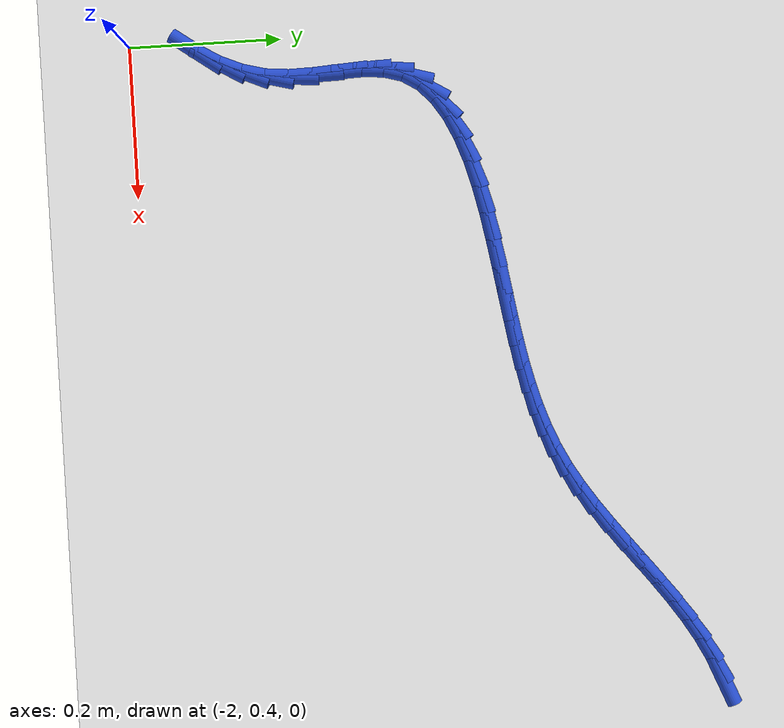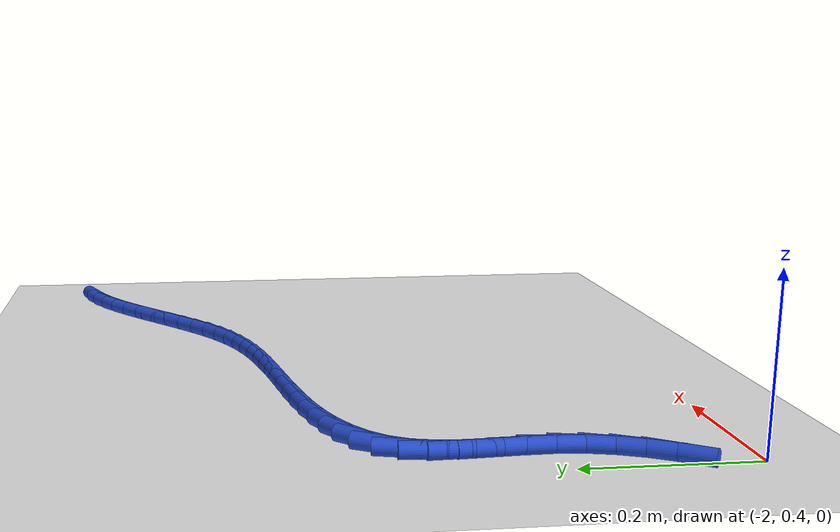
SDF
<sdf version="1.6">
 <world name="default">
  <model name="ground_plane">
   <static>1</static>
   <link name="link">
    <collision name="collision">
     <geometry><plane><normal>0 0 1</normal><size>100 100</size></plane></geometry>
     <surface><friction><ode><mu>100</mu><mu2>50</mu2></ode></friction></surface>
    </collision>
    <visual name="visual">
     <cast_shadows>0</cast_shadows>
     <geometry><plane><normal>0 0 1</normal><size>100 100</size></plane></geometry>
     <material>
      <script><uri>file://media/materials/scripts/gazebo.material</uri><name>Gazebo/WhiteGlow</name></script>
     </material>
    </visual>
   </link>
  </model>
  <model name="line">
   <link name="link_56">
    <pose>-1.12809393031731 1.1314713326679728 0.01 0 1.57 0.3816964095908053</pose>
    <collision name="collision">
     <geometry><cylinder><radius>0.01</radius><length>0.08</length></cylinder></geometry>
    </collision>
    <visual name="visual">
     <material>
      <script><name>Gazebo/Blue</name><uri>file://media/materials/scripts/gazebo.material</uri></script>
     </material>
     <geometry><cylinder><radius>0.01</radius><length>0.08</length></cylinder></geometry>
    </visual>
   </link>
   <link name="link_57">
    <pose>-1.1558362141451612 1.1203361043866404 0.01 0 1.57 0.47477163738193723</pose>
    <collision name="collision">
     <geometry><cylinder><radius>0.01</radius><length>0.08</length></cylinder></geometry>
    </collision>
    <visual name="visual">
     <material>
      <script><name>Gazebo/Blue</name><uri>file://media/materials/scripts/gazebo.material</uri></script>
     </material>
     <geometry><cylinder><radius>0.01</radius><length>0.08</length></cylinder></geometry>
    </visual>
   </link>
   <link name="link_58">
    <pose>-1.1829230337664418 1.1064139290656299 0.01 0 1.57 0.5476718748757278</pose>
    <collision name="collision">
     <geometry><cylinder><radius>0.01</radius><length>0.08</length></cylinder></geometry>
    </collision>
    <visual name="visual">
     <material>
      <script><name>Gazebo/Blue</name><uri>file://media/materials/scripts/gazebo.material</uri></script>
     </material>
     <geometry><cylinder><radius>0.01</radius><length>0.08</length></cylinder></geometry>
    </visual>
   </link>
   <link name="link_59">
    <pose>-1.209465143816394 1.0902257233415507 0.01 0 1.57 0.6018701174483252</pose>
    <collision name="collision">
     <geometry><cylinder><radius>0.01</radius><length>0.08</length></cylinder></geometry>
    </collision>
    <visual name="visual">
     <material>
      <script><name>Gazebo/Blue</name><uri>file://media/materials/scripts/gazebo.material</uri></script>
     </material>
     <geometry><cylinder><radius>0.01</radius><length>0.08</length></cylinder></geometry>
    </visual>
   </link>
   <link name="link_60">
    <pose>-1.235573298930259 1.0722924038510127 0.01 0 1.57 0.6389884237398049</pose>
    <collision name="collision">
     <geometry><cylinder><radius>0.01</radius><length>0.08</length></cylinder></geometry>
    </collision>
    <visual name="visual">
     <material>
      <script><name>Gazebo/Blue</name><uri>file://media/materials/scripts/gazebo.material</uri></script>
     </material>
     <geometry><cylinder><radius>0.01</radius><length>0.08</length></cylinder></geometry>
    </visual>
   </link>
   <link name="link_61">
    <pose>-1.2613582537432801 1.0531348872306256 0.01 0 1.57 0.6603378455330079</pose>
    <collision name="collision">
     <geometry><cylinder><radius>0.01</radius><length>0.08</length></cylinder></geometry>
    </collision>
    <visual name="visual">
     <material>
      <script><name>Gazebo/Blue</name><uri>file://media/materials/scripts/gazebo.material</uri></script>
     </material>
     <geometry><cylinder><radius>0.01</radius><length>0.08</length></cylinder></geometry>
    </visual>
   </link>
   <link name="link_62">
    <pose>-1.2869307628906987 1.0332740901170003 0.01 0 1.57 0.6667061618446942</pose>
    <collision name="collision">
     <geometry><cylinder><radius>0.01</radius><length>0.08</length></cylinder></geometry>
    </collision>
    <visual name="visual">
     <material>
      <script><name>Gazebo/Blue</name><uri>file://media/materials/scripts/gazebo.material</uri></script>
     </material>
     <geometry><cylinder><radius>0.01</radius><length>0.08</length></cylinder></geometry>
    </visual>
   </link>
   <link name="link_63">
    <pose>-1.3124015810077565 1.0132309291467452 0.01 0 1.57 0.6582720526338149</pose>
    <collision name="collision">
     <geometry><cylinder><radius>0.01</radius><length>0.08</length></cylinder></geometry>
    </collision>
    <visual name="visual">
     <material>
      <script><name>Gazebo/Blue</name><uri>file://media/materials/scripts/gazebo.material</uri></script>
     </material>
     <geometry><cylinder><radius>0.01</radius><length>0.08</length></cylinder></geometry>
    </visual>
   </link>
   <link name="link_64">
    <pose>-1.3378814627296964 0.9935263209564712 0.01 0 1.57 0.6345759876998177</pose>
    <collision name="collision">
     <geometry><cylinder><radius>0.01</radius><length>0.08</length></cylinder></geometry>
    </collision>
    <visual name="visual">
     <material>
      <script><name>Gazebo/Blue</name><uri>file://media/materials/scripts/gazebo.material</uri></script>
     </material>
     <geometry><cylinder><radius>0.01</radius><length>0.08</length></cylinder></geometry>
    </visual>
   </link>
   <link name="link_65">
    <pose>-1.363481162691759 0.9746811821827874 0.01 0 1.57 0.5945290219341868</pose>
    <collision name="collision">
     <geometry><cylinder><radius>0.01</radius><length>0.08</length></cylinder></geometry>
    </collision>
    <visual name="visual">
     <material>
      <script><name>Gazebo/Blue</name><uri>file://media/materials/scripts/gazebo.material</uri></script>
     </material>
     <geometry><cylinder><radius>0.01</radius><length>0.08</length></cylinder></geometry>
    </visual>
   </link>
   <link name="link_66">
    <pose>-1.3893114355291878 0.9572164294623045 0.01 0 1.57 0.5364926561047353</pose>
    <collision name="collision">
     <geometry><cylinder><radius>0.01</radius><length>0.08</length></cylinder></geometry>
    </collision>
    <visual name="visual">
     <material>
      <script><name>Gazebo/Blue</name><uri>file://media/materials/scripts/gazebo.material</uri></script>
     </material>
     <geometry><cylinder><radius>0.01</radius><length>0.08</length></cylinder></geometry>
    </visual>
   </link>
   <link name="link_67">
    <pose>-1.4154830363205189 0.9416529108095737 0.01 0 1.57 0.4636962202911939</pose>
    <collision name="collision">
     <geometry><cylinder><radius>0.01</radius><length>0.08</length></cylinder></geometry>
    </collision>
    <visual name="visual">
     <material>
      <script><name>Gazebo/Blue</name><uri>file://media/materials/scripts/gazebo.material</uri></script>
     </material>
     <geometry><cylinder><radius>0.01</radius><length>0.08</length></cylinder></geometry>
    </visual>
   </link>
   <link name="link_68">
    <pose>-1.4421078350065983 0.9283388935949337 0.01 0 1.57 0.39261419955952964</pose>
    <collision name="collision">
     <geometry><cylinder><radius>0.01</radius><length>0.08</length></cylinder></geometry>
    </collision>
    <visual name="visual">
     <material>
      <script><name>Gazebo/Blue</name><uri>file://media/materials/scripts/gazebo.material</uri></script>
     </material>
     <geometry><cylinder><radius>0.01</radius><length>0.08</length></cylinder></geometry>
    </visual>
   </link>
   <link name="link_69">
    <pose>-1.4693012216646817 0.9170777282022049 0.01 0 1.57 0.32882199034700965</pose>
    <collision name="collision">
     <geometry><cylinder><radius>0.01</radius><length>0.08</length></cylinder></geometry>
    </collision>
    <visual name="visual">
     <material>
      <script><name>Gazebo/Blue</name><uri>file://media/materials/scripts/gazebo.material</uri></script>
     </material>
     <geometry><cylinder><radius>0.01</radius><length>0.08</length></cylinder></geometry>
    </visual>
   </link>
   <link name="link_70">
    <pose>-1.497179279434528 0.9075654789654604 0.01 0 1.57 0.274211165654365</pose>
    <collision name="collision">
     <geometry><cylinder><radius>0.01</radius><length>0.08</length></cylinder></geometry>
    </collision>
    <visual name="visual">
     <material>
      <script><name>Gazebo/Blue</name><uri>file://media/materials/scripts/gazebo.material</uri></script>
     </material>
     <geometry><cylinder><radius>0.01</radius><length>0.08</length></cylinder></geometry>
    </visual>
   </link>
   <link name="link_71">
    <pose>-1.5258580914558948 0.8994982102187736 0.01 0 1.57 0.22989105613551558</pose>
    <collision name="collision">
     <geometry><cylinder><radius>0.01</radius><length>0.08</length></cylinder></geometry>
    </collision>
    <visual name="visual">
     <material>
      <script><name>Gazebo/Blue</name><uri>file://media/materials/scripts/gazebo.material</uri></script>
     </material>
     <geometry><cylinder><radius>0.01</radius><length>0.08</length></cylinder></geometry>
    </visual>
   </link>
   <link name="link_72">
    <pose>-1.555453740868541 0.8925719862962173 0.01 0 1.57 0.19624631797527334</pose>
    <collision name="collision">
     <geometry><cylinder><radius>0.01</radius><length>0.08</length></cylinder></geometry>
    </collision>
    <visual name="visual">
     <material>
      <script><name>Gazebo/Blue</name><uri>file://media/materials/scripts/gazebo.material</uri></script>
     </material>
     <geometry><cylinder><radius>0.01</radius><length>0.08</length></cylinder></geometry>
    </visual>
   </link>
   <link name="link_73">
    <pose>-1.5860823108122246 0.8864828715318653 0.01 0 1.57 0.17308889906790426</pose>
    <collision name="collision">
     <geometry><cylinder><radius>0.01</radius><length>0.08</length></cylinder></geometry>
    </collision>
    <visual name="visual">
     <material>
      <script><name>Gazebo/Blue</name><uri>file://media/materials/scripts/gazebo.material</uri></script>
     </material>
     <geometry><cylinder><radius>0.01</radius><length>0.08</length></cylinder></geometry>
    </visual>
   </link>
   <link name="link_74">
    <pose>-1.617859884426704 0.8809269302597903 0.01 0 1.57 0.15983177312235988</pose>
    <collision name="collision">
     <geometry><cylinder><radius>0.01</radius><length>0.08</length></cylinder></geometry>
    </collision>
    <visual name="visual">
     <material>
      <script><name>Gazebo/Blue</name><uri>file://media/materials/scripts/gazebo.material</uri></script>
     </material>
     <geometry><cylinder><radius>0.01</radius><length>0.08</length></cylinder></geometry>
    </visual>
   </link>
   <link name="link_75">
    <pose>-1.650902544851737 0.8756002268140655 0.01 0 1.57 0.1556925260572796</pose>
    <collision name="collision">
     <geometry><cylinder><radius>0.01</radius><length>0.08</length></cylinder></geometry>
    </collision>
    <visual name="visual">
     <material>
      <script><name>Gazebo/Blue</name><uri>file://media/materials/scripts/gazebo.material</uri></script>
     </material>
     <geometry><cylinder><radius>0.01</radius><length>0.08</length></cylinder></geometry>
    </visual>
   </link>
   <link name="link_76">
    <pose>-1.6853179602456794 0.8701982851758795 0.01 0 1.57 0.16208183649633973</pose>
    <collision name="collision">
     <geometry><cylinder><radius>0.01</radius><length>0.08</length></cylinder></geometry>
    </collision>
    <visual name="visual">
     <material>
      <script><name>Gazebo/Blue</name><uri>file://media/materials/scripts/gazebo.material</uri></script>
     </material>
     <geometry><cylinder><radius>0.01</radius><length>0.08</length></cylinder></geometry>
    </visual>
   </link>
   <link name="link_77">
    <pose>-1.7208278295190356 0.864391845005864 0.01 0 1.57 0.18169004166233904</pose>
    <collision name="collision">
     <geometry><cylinder><radius>0.01</radius><length>0.08</length></cylinder></geometry>
    </collision>
    <visual name="visual">
     <material>
      <script><name>Gazebo/Blue</name><uri>file://media/materials/scripts/gazebo.material</uri></script>
     </material>
     <geometry><cylinder><radius>0.01</radius><length>0.08</length></cylinder></geometry>
    </visual>
   </link>
   <link name="link_78">
    <pose>-1.7566154922700523 0.8578170761903919 0.01 0 1.57 0.21556258383382973</pose>
    <collision name="collision">
     <geometry><cylinder><radius>0.01</radius><length>0.08</length></cylinder></geometry>
    </collision>
    <visual name="visual">
     <material>
      <script><name>Gazebo/Blue</name><uri>file://media/materials/scripts/gazebo.material</uri></script>
     </material>
     <geometry><cylinder><radius>0.01</radius><length>0.08</length></cylinder></geometry>
    </visual>
   </link>
   <link name="link_79">
    <pose>-1.7918243331741353 0.8501075829823794 0.01 0 1.57 0.26624336954003286</pose>
    <collision name="collision">
     <geometry><cylinder><radius>0.01</radius><length>0.08</length></cylinder></geometry>
    </collision>
    <visual name="visual">
     <material>
      <script><name>Gazebo/Blue</name><uri>file://media/materials/scripts/gazebo.material</uri></script>
     </material>
     <geometry><cylinder><radius>0.01</radius><length>0.08</length></cylinder></geometry>
    </visual>
   </link>
   <link name="link_80">
    <pose>-1.8255977369066885 0.8408969696347424 0.01 0 1.57 0.3383619925845333</pose>
    <collision name="collision">
     <geometry><cylinder><radius>0.01</radius><length>0.08</length></cylinder></geometry>
    </collision>
    <visual name="visual">
     <material>
      <script><name>Gazebo/Blue</name><uri>file://media/materials/scripts/gazebo.material</uri></script>
     </material>
     <geometry><cylinder><radius>0.01</radius><length>0.08</length></cylinder></geometry>
    </visual>
   </link>
   <link name="link_81">
    <pose>-1.8570790881431165 0.8298188404003967 0.01 0 1.57 0.4392359835745471</pose>
    <collision name="collision">
     <geometry><cylinder><radius>0.01</radius><length>0.08</length></cylinder></geometry>
    </collision>
    <visual name="visual">
     <material>
      <script><name>Gazebo/Blue</name><uri>file://media/materials/scripts/gazebo.material</uri></script>
     </material>
     <geometry><cylinder><radius>0.01</radius><length>0.08</length></cylinder></geometry>
    </visual>
   </link>
   <link name="link_82">
    <pose>-1.8854117715588237 0.8165067995322585 0.01 0 1.57 0.5792461918900362</pose>
    <collision name="collision">
     <geometry><cylinder><radius>0.01</radius><length>0.08</length></cylinder></geometry>
    </collision>
    <visual name="visual">
     <material>
      <script><name>Gazebo/Blue</name><uri>file://media/materials/scripts/gazebo.material</uri></script>
     </material>
     <geometry><cylinder><radius>0.01</radius><length>0.08</length></cylinder></geometry>
    </visual>
   </link>
   <link name="link_83">
    <pose>-1.9097391718292154 0.8005944512832435 0.01 0 1.57 0.770105125531339</pose>
    <collision name="collision">
     <geometry><cylinder><radius>0.01</radius><length>0.08</length></cylinder></geometry>
    </collision>
    <visual name="visual">
     <material>
      <script><name>Gazebo/Blue</name><uri>file://media/materials/scripts/gazebo.material</uri></script>
     </material>
     <geometry><cylinder><radius>0.01</radius><length>0.08</length></cylinder></geometry>
    </visual>
   </link>
   <link name="link_84">
    <pose>-1.9292046736296953 0.7817153999062683 0.01 0 1.57 1.0165991977710864</pose>
    <collision name="collision">
     <geometry><cylinder><radius>0.01</radius><length>0.08</length></cylinder></geometry>
    </collision>
    <visual name="visual">
     <material>
      <script><name>Gazebo/Blue</name><uri>file://media/materials/scripts/gazebo.material</uri></script>
     </material>
     <geometry><cylinder><radius>0.01</radius><length>0.08</length></cylinder></geometry>
    </visual>
   </link>
   <link name="link_85">
    <pose>-1.9429516616356688 0.7595032496542484 0.01 0 1.57 1.2948739624009908</pose>
    <collision name="collision">
     <geometry><cylinder><radius>0.01</radius><length>0.08</length></cylinder></geometry>
    </collision>
    <visual name="visual">
     <material>
      <script><name>Gazebo/Blue</name><uri>file://media/materials/scripts/gazebo.material</uri></script>
     </material>
     <geometry><cylinder><radius>0.01</radius><length>0.08</length></cylinder></geometry>
    </visual>
   </link>
   <link name="link_86">
    <pose>-1.9502702571986594 0.7336557009542304 0.01 0 1.57 1.5037328987565557</pose>
    <collision name="collision">
     <geometry><cylinder><radius>0.01</radius><length>0.08</length></cylinder></geometry>
    </collision>
    <visual name="visual">
     <material>
      <script><name>Gazebo/Blue</name><uri>file://media/materials/scripts/gazebo.material</uri></script>
     </material>
     <geometry><cylinder><radius>0.01</radius><length>0.08</length></cylinder></geometry>
    </visual>
   </link>
   <link name="link_87">
    <pose>-1.9522188795586517 0.7046428659599684 0.01 0 1.57 -1.5326147852702243</pose>
    <collision name="collision">
     <geometry><cylinder><radius>0.01</radius><length>0.08</length></cylinder></geometry>
    </collision>
    <visual name="visual">
     <material>
      <script><name>Gazebo/Blue</name><uri>file://media/materials/scripts/gazebo.material</uri></script>
     </material>
     <geometry><cylinder><radius>0.01</radius><length>0.08</length></cylinder></geometry>
    </visual>
   </link>
   <link name="link_88">
    <pose>-1.9510271735653084 0.6734464608945538 0.01 0 1.57 -1.506620479218856</pose>
    <collision name="collision">
     <geometry><cylinder><radius>0.01</radius><length>0.08</length></cylinder></geometry>
    </collision>
    <visual name="visual">
     <material>
      <script><name>Gazebo/Blue</name><uri>file://media/materials/scripts/gazebo.material</uri></script>
     </material>
     <geometry><cylinder><radius>0.01</radius><length>0.08</length></cylinder></geometry>
    </visual>
   </link>
   <link name="link_89">
    <pose>-1.9489457163211397 0.64105734541651 0.01 0 1.57 -1.5486885445435379</pose>
    <collision name="collision">
     <geometry><cylinder><radius>0.01</radius><length>0.08</length></cylinder></geometry>
    </collision>
    <visual name="visual">
     <material>
      <script><name>Gazebo/Blue</name><uri>file://media/materials/scripts/gazebo.material</uri></script>
     </material>
     <geometry><cylinder><radius>0.01</radius><length>0.08</length></cylinder></geometry>
    </visual>
   </link>
   <link name="link_90">
    <pose>-1.9482250849286584 0.6084663791843601 0.01 0 1.57 1.4802147833192407</pose>
    <collision name="collision">
     <geometry><cylinder><radius>0.01</radius><length>0.08</length></cylinder></geometry>
    </collision>
    <visual name="visual">
     <material>
      <script><name>Gazebo/Blue</name><uri>file://media/materials/scripts/gazebo.material</uri></script>
     </material>
     <geometry><cylinder><radius>0.01</radius><length>0.08</length></cylinder></geometry>
    </visual>
   </link>
   <link name="link_91">
    <pose>-1.9511137329602168 0.5766636175147232 0.01 0 1.57 1.3141391077770488</pose>
    <collision name="collision">
     <geometry><cylinder><radius>0.01</radius><length>0.08</length></cylinder></geometry>
    </collision>
    <visual name="visual">
     <material>
      <script><name>Gazebo/Blue</name><uri>file://media/materials/scripts/gazebo.material</uri></script>
     </material>
     <geometry><cylinder><radius>0.01</radius><length>0.08</length></cylinder></geometry>
    </visual>
   </link>
   <link name="link_92">
    <pose>-1.9590718809997225 0.546340552117548 0.01 0 1.57 1.1618142885916145</pose>
    <collision name="collision">
     <geometry><cylinder><radius>0.01</radius><length>0.08</length></cylinder></geometry>
    </collision>
    <visual name="visual">
     <material>
      <script><name>Gazebo/Blue</name><uri>file://media/materials/scripts/gazebo.material</uri></script>
     </material>
     <geometry><cylinder><radius>0.01</radius><length>0.08</length></cylinder></geometry>
    </visual>
   </link>
   <link name="link_93">
    <pose>-1.9715959118148902 0.5174448203983977 0.01 0 1.57 1.0382696472280797</pose>
    <collision name="collision">
     <geometry><cylinder><radius>0.01</radius><length>0.08</length></cylinder></geometry>
    </collision>
    <visual name="visual">
     <material>
      <script><name>Gazebo/Blue</name><uri>file://media/materials/scripts/gazebo.material</uri></script>
     </material>
     <geometry><cylinder><radius>0.01</radius><length>0.08</length></cylinder></geometry>
    </visual>
   </link>
   <link name="link_94">
    <pose>-1.9878814704580572 0.4898101475842255 0.01 0 1.57 0.9434557264995272</pose>
    <collision name="collision">
     <geometry><cylinder><radius>0.01</radius><length>0.08</length></cylinder></geometry>
    </collision>
    <visual name="visual">
     <material>
      <script><name>Gazebo/Blue</name><uri>file://media/materials/scripts/gazebo.material</uri></script>
     </material>
     <geometry><cylinder><radius>0.01</radius><length>0.08</length></cylinder></geometry>
    </visual>
   </link>
  </model>
 </world>
</sdf>
